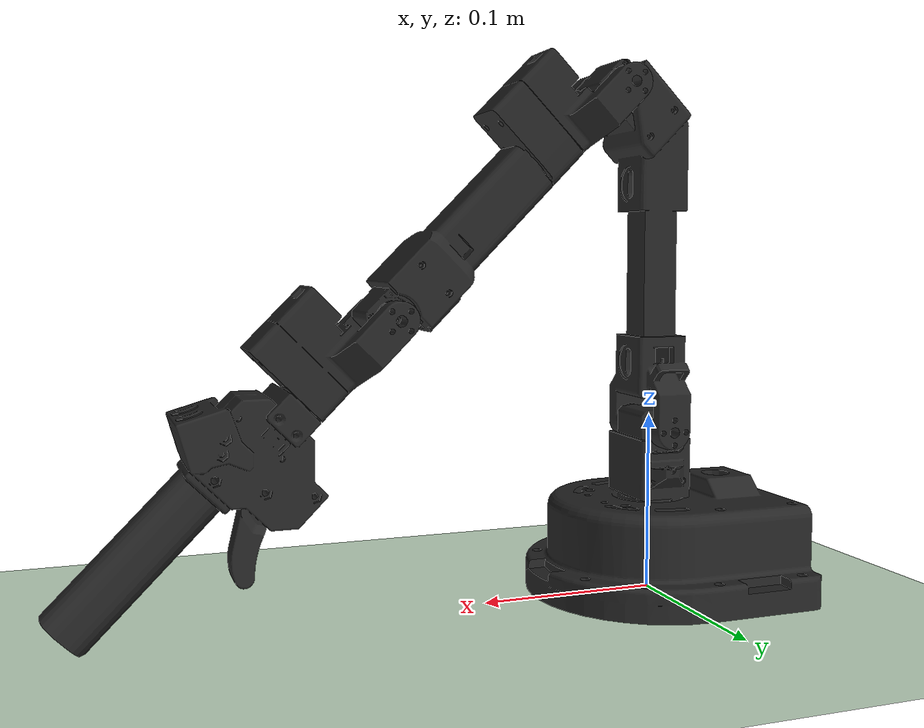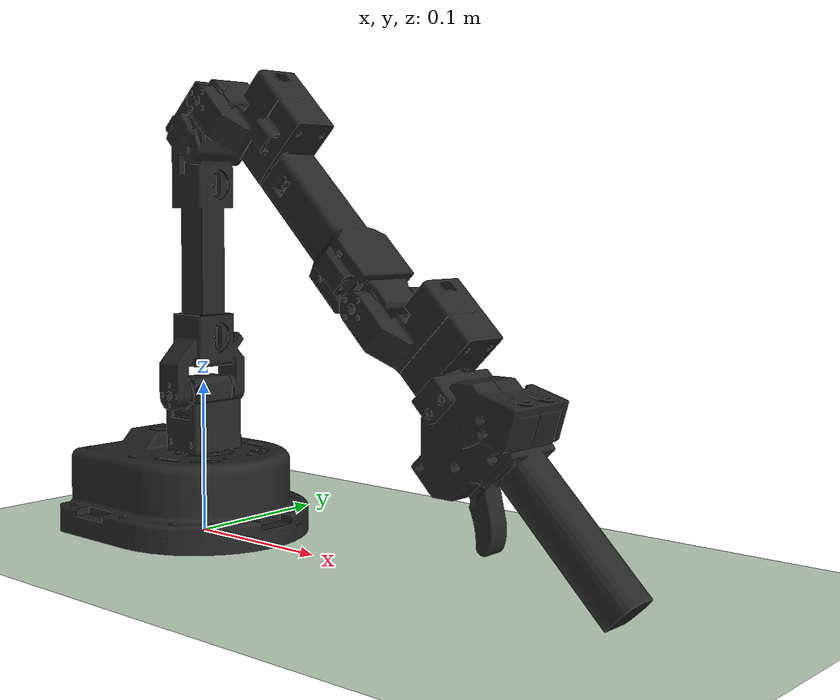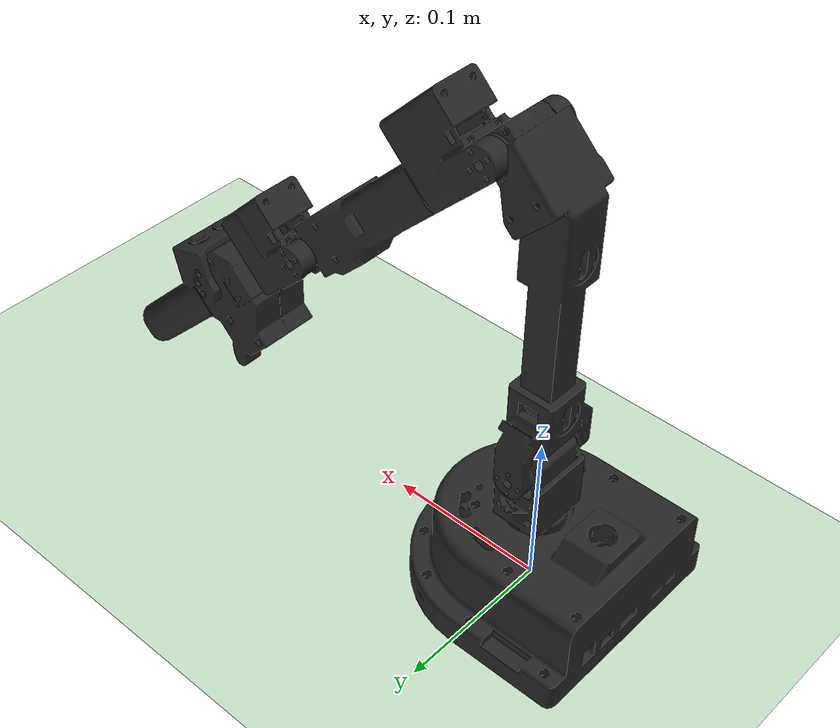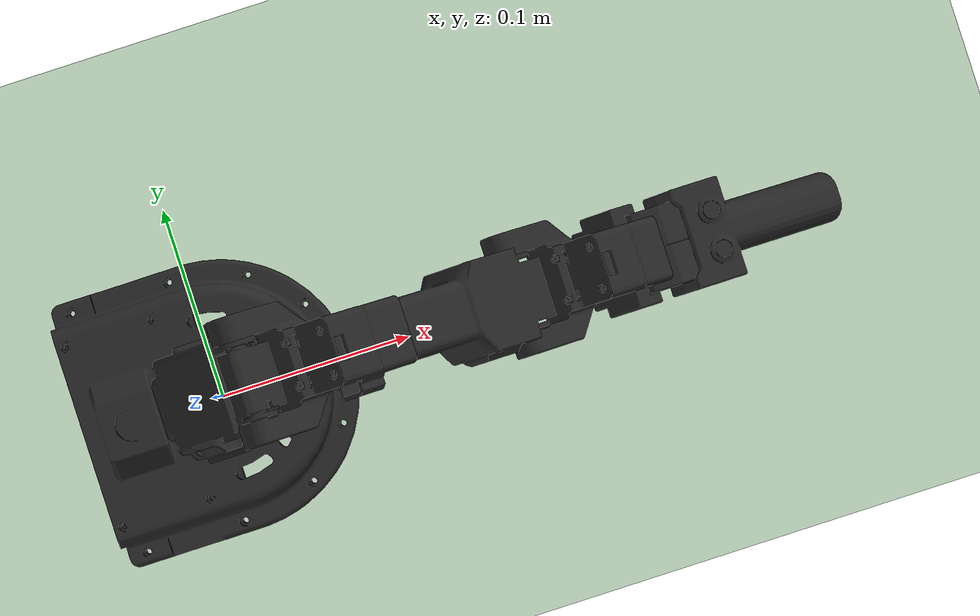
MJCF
<mujoco model="Alicia_D_v5_6_leader">
  <compiler angle="radian" meshdir="../../meshes/Alicia_D_v5_6/leader/"/>

  <asset>
    <mesh name="base_link" content_type="model/stl" file="base_link.STL"/>
    <mesh name="link1" content_type="model/stl" file="link1.STL"/>
    <mesh name="link2" content_type="model/stl" file="link2.STL"/>
    <mesh name="link3" content_type="model/stl" file="link3.STL"/>
    <mesh name="link4" content_type="model/stl" file="link4.STL"/>
    <mesh name="link5" content_type="model/stl" file="link5.STL"/>
    <mesh name="link6" content_type="model/stl" file="link6.STL"/>
    <texture builtin="gradient" height="100" rgb1=".4 .5 .6" rgb2="0 0 0" type="skybox" width="100" />
    <texture builtin="checker" height="100" name="texplane" rgb1="1 1 1" rgb2=".8 .9 1" type="2d" width="100" />
    <material name="MatPlane" reflectance="0.5" texrepeat="1 1" texture="texplane" texuniform="true" />
    <material name="white" rgba="1 1 1 1" shininess="0.5" specular="0.1" />
    <material name="black" rgba="0.15 0.15 0.15 1" shininess="0.2" specular="0.05" />
    <material name="invisible" rgba="1 1 1 0" shininess="0" specular="0" />
  </asset>

  <worldbody>
    <geom conaffinity="1" condim="3" contype="1" friction="1 .1 .1" group="2" material="MatPlane" name="floor" pos="0 0 0" rgba="0.8 0.9 0.8 1" size="10 10 0.125" type="plane" />
    <light castshadow="false" cutoff="100" diffuse="1 1 1" dir="-0 0 -1.3" directional="true" exponent="1" pos="0 0 1.3" specular=".1 .1 .1" />
    <body name="base_link" pos="0 0 0">
      <geom type="mesh" contype="0" conaffinity="0" group="1" density="0" rgba="0.15 0.15 0.15 1" mesh="base_link"/>
      <geom type="mesh" rgba="0.15 0.15 0.15 1" mesh="base_link"/>
      <body name="link1" pos="0 0 0.05085" quat="0.707107 0.707107 0 0">
        <inertial pos="-2.80403e-05 0.0195626 -0.0025162" quat="0.930394 0.366424 0.00442635 -0.00894704" mass="0.0243713" diaginertia="6.62423e-06 5.8811e-06 5.73995e-06"/>
        <joint name="joint1" pos="0 0 0" axis="0 1 0" range="-2.749 2.749" actuatorfrcrange="-5 5"/>
        <geom type="mesh" contype="0" conaffinity="0" group="1" density="0" rgba="0.15 0.15 0.15 1" mesh="link1"/>
        <geom type="mesh" rgba="0.15 0.15 0.15 1" mesh="link1"/>
        <body name="link2" pos="0 0.04286 -0.0003" quat="0 0.707107 0.707107 0">
          <inertial pos="0.105079 0.00201788 -0.000193248" quat="0.498033 0.477654 0.514169 0.509353" mass="0.095362" diaginertia="6.60825e-05 5.66505e-05 2.48985e-05"/>
          <joint name="joint2" pos="0 0 0" axis="0 0 -1" range="-1.75 1.75" actuatorfrcrange="-5 5"/>
          <geom type="mesh" contype="0" conaffinity="0" group="1" density="0" rgba="0.15 0.15 0.15 1" mesh="link2"/>
          <geom type="mesh" rgba="0.15 0.15 0.15 1" mesh="link2"/>
          <body name="link3" pos="0.1892 0.027452 0.001" quat="0.382681 0 0 -0.923881">
            <inertial pos="-0.0114876 -0.0328018 0.000119091" quat="0.604151 -0.0255667 -0.0365774 0.795619" mass="0.0548527" diaginertia="2.78971e-05 1.9525e-05 1.88322e-05"/>
            <joint name="joint3" pos="0 0 0" axis="0 0 -1" range="-0.6 2.2" actuatorfrcrange="-5 5"/>
            <geom type="mesh" contype="0" conaffinity="0" group="1" density="0" rgba="0.15 0.15 0.15 1" mesh="link3"/>
            <geom type="mesh" rgba="0.15 0.15 0.15 1" mesh="link3"/>
            <body name="link4" pos="-0.00389378 -0.0576 0.0005" quat="0.707107 0.707107 0 0">
              <inertial pos="0.000302577 -0.000654183 0.0662938" quat="0.999965 0.00134424 0.00709253 -0.00434056" mass="0.0644612" diaginertia="6.92187e-05 6.77552e-05 1.66713e-05"/>
              <joint name="joint4" pos="0 0 0" axis="0 0 -1" range="-2.79 2.79" actuatorfrcrange="-5 5"/>
              <geom type="mesh" contype="0" conaffinity="0" group="1" density="0" rgba="0.15 0.15 0.15 1" mesh="link4"/>
              <geom type="mesh" rgba="0.15 0.15 0.15 1" mesh="link4"/>
              <body name="link5" pos="0 0 0.12231" quat="0.707107 -0.707107 0 0">
                <inertial pos="-0.0107578 -0.0305542 0.000363115" quat="0.600719 -0.0156964 -0.0158002 0.79915" mass="0.0510331" diaginertia="2.66558e-05 1.87232e-05 1.78187e-05"/>
                <joint name="joint5" pos="0 0 0" axis="0 0 -1" range="-1.57 1.57" actuatorfrcrange="-5 5"/>
                <geom type="mesh" contype="0" conaffinity="0" group="1" density="0" rgba="0.15 0.15 0.15 1" mesh="link5"/>
                <geom type="mesh" rgba="0.15 0.15 0.15 1" mesh="link5"/>
                <body name="link6" pos="-0.0038938 -0.0575 0.0005" quat="0.707105 0.707108 0 0">
                  <inertial pos="-0.000627624 -7.97093e-05 0.0717231" quat="0.704853 0.00286502 0.00565058 0.709325" mass="0.148889" diaginertia="9.98502e-05 8.45586e-05 3.99573e-05"/>
                  <joint name="joint6" pos="0 0 0" axis="0 0 -1" range="-3.14159 3.14159" actuatorfrcrange="-5 5"/>
                  <geom type="mesh" contype="0" conaffinity="0" group="1" density="0" rgba="0.15 0.15 0.15 1" mesh="link6"/>
                  <geom type="mesh" rgba="0.15 0.15 0.15 1" mesh="link6"/>
                  <body name="tool0" pos="0 0 0.05">
                    <inertial pos="0 0 0" quat="1 0 0 0" mass="0.001" diaginertia="1e-08 1e-08 1e-08" />
                    <geom type="sphere" size="0.01" contype="0" conaffinity="0" group="1" density="0" rgba="1 0 0 0.5" />
                    <site name="tool0_site" pos="0 0 0" size="0.01" type="sphere" />
                  </body>
                </body>
              </body>
            </body>
          </body>
        </body>
      </body>
    </body>
  </worldbody>
  <contact>
    <exclude body1="base_link" body2="link1" />
    <exclude body1="link1" body2="link2" />
    <exclude body1="link2" body2="link3" />
    <exclude body1="link3" body2="link4" />
    <exclude body1="link4" body2="link5" />
    <exclude body1="link5" body2="link6" />
  </contact>
</mujoco>
